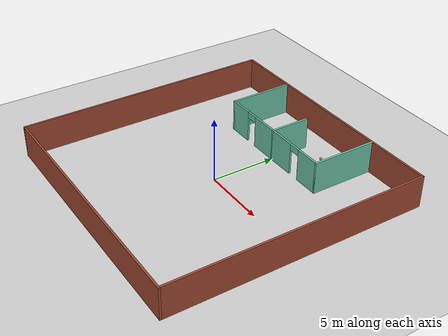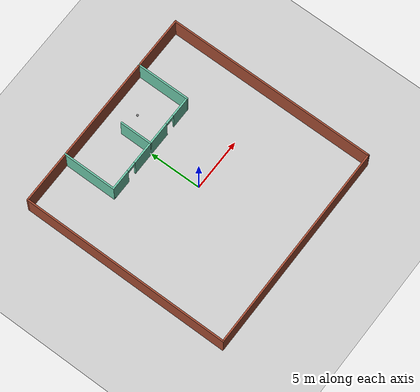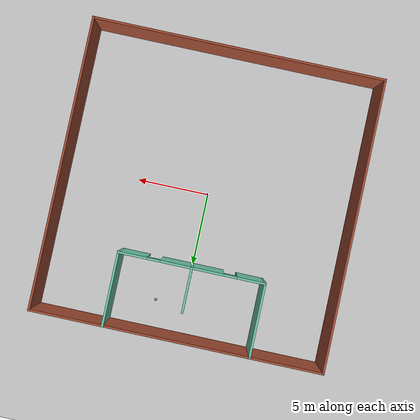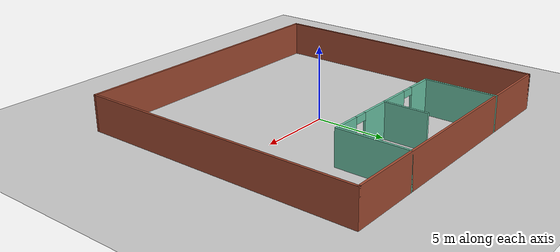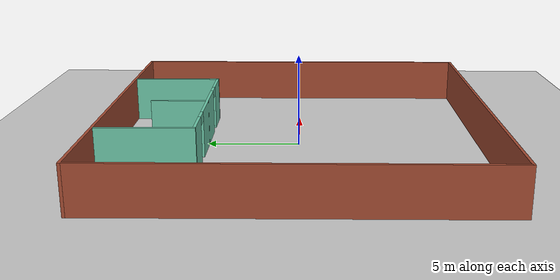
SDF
<sdf version="1.6">
 <world name="default">
  <model name="ground_plane">
   <static>1</static>
   <link name="link">
    <collision name="collision">
     <geometry><plane><normal>0 0 1</normal><size>100 100</size></plane></geometry>
     <surface>
      <contact><collide_bitmask>65535</collide_bitmask></contact>
      <friction><ode><mu>100</mu><mu2>50</mu2></ode></friction>
     </surface>
    </collision>
    <visual name="visual">
     <cast_shadows>0</cast_shadows>
     <geometry><plane><normal>0 0 1</normal><size>100 100</size></plane></geometry>
     <material>
      <script><uri>file://media/materials/scripts/gazebo.material</uri><name>Gazebo/Grey</name></script>
     </material>
    </visual>
   </link>
  </model>
  <model name="Room">
   <pose>-0.0061 0.018836 0 0 -0 0</pose>
   <link name="Wall_0">
    <collision name="Wall_0_Collision">
     <geometry><box><size>20.15 0.15 2.5</size></box></geometry>
     <pose>0 0 1.25 0 -0 0</pose>
    </collision>
    <visual name="Wall_0_Visual">
     <pose>0 0 1.25 0 -0 0</pose>
     <geometry><box><size>20.15 0.15 2.5</size></box></geometry>
     <material>
      <script><uri>file://media/materials/scripts/gazebo.material</uri><name>Gazebo/Bricks</name></script>
      <ambient>1 1 1 1</ambient>
     </material>
     <meta><layer>0</layer></meta>
    </visual>
    <pose>-10 0 0 0 -0 -1.5708</pose>
   </link>
   <link name="Wall_10">
    <collision name="Wall_10_Collision">
     <geometry><box><size>5.15 0.15 2.5</size></box></geometry>
     <pose>0 0 1.25 0 -0 0</pose>
    </collision>
    <visual name="Wall_10_Visual">
     <pose>0 0 1.25 0 -0 0</pose>
     <geometry><box><size>5.15 0.15 2.5</size></box></geometry>
     <material>
      <script><uri>file://media/materials/scripts/gazebo.material</uri><name>Gazebo/Grey</name></script>
      <ambient>0.435294 0.796078 0.67451 1</ambient>
     </material>
     <meta><layer>0</layer></meta>
    </visual>
    <pose>5 7.5 0 0 -0 1.5708</pose>
   </link>
   <link name="Wall_12">
    <collision name="Wall_12_Collision">
     <geometry><box><size>3.15 0.15 2.5</size></box></geometry>
     <pose>0 0 1.25 0 -0 0</pose>
    </collision>
    <visual name="Wall_12_Visual">
     <pose>0 0 1.25 0 -0 0</pose>
     <geometry><box><size>3.15 0.15 2.5</size></box></geometry>
     <material>
      <script><uri>file://media/materials/scripts/gazebo.material</uri><name>Gazebo/Grey</name></script>
      <ambient>0.435294 0.796078 0.67451 1</ambient>
     </material>
     <meta><layer>0</layer></meta>
    </visual>
    <pose>0 6.5 0 0 -0 1.5708</pose>
   </link>
   <link name="Wall_2">
    <collision name="Wall_2_Collision">
     <geometry><box><size>20.15 0.15 2.5</size></box></geometry>
     <pose>0 0 1.25 0 -0 0</pose>
    </collision>
    <visual name="Wall_2_Visual">
     <pose>0 0 1.25 0 -0 0</pose>
     <geometry><box><size>20.15 0.15 2.5</size></box></geometry>
     <material>
      <script><uri>file://media/materials/scripts/gazebo.material</uri><name>Gazebo/Bricks</name></script>
      <ambient>1 1 1 1</ambient>
     </material>
     <meta><layer>0</layer></meta>
    </visual>
    <pose>0 10 0 0 -0 0</pose>
   </link>
   <link name="Wall_4">
    <collision name="Wall_4_Collision">
     <geometry><box><size>20.15 0.15 2.5</size></box></geometry>
     <pose>0 0 1.25 0 -0 0</pose>
    </collision>
    <visual name="Wall_4_Visual">
     <pose>0 0 1.25 0 -0 0</pose>
     <geometry><box><size>20.15 0.15 2.5</size></box></geometry>
     <material>
      <script><uri>file://media/materials/scripts/gazebo.material</uri><name>Gazebo/Bricks</name></script>
      <ambient>1 1 1 1</ambient>
     </material>
     <meta><layer>0</layer></meta>
    </visual>
    <pose>10 0 0 0 -0 -1.5708</pose>
   </link>
   <link name="Wall_6">
    <collision name="Wall_6_Collision">
     <geometry><box><size>20.15 0.15 2.5</size></box></geometry>
     <pose>0 0 1.25 0 -0 0</pose>
    </collision>
    <visual name="Wall_6_Visual">
     <pose>0 0 1.25 0 -0 0</pose>
     <geometry><box><size>20.15 0.15 2.5</size></box></geometry>
     <material>
      <script><uri>file://media/materials/scripts/gazebo.material</uri><name>Gazebo/Bricks</name></script>
      <ambient>1 1 1 1</ambient>
     </material>
     <meta><layer>0</layer></meta>
    </visual>
    <pose>0 -10 0 0 -0 0</pose>
   </link>
   <link name="Wall_8">
    <collision name="Wall_8_Collision">
     <geometry><box><size>5.15 0.15 2.5</size></box></geometry>
     <pose>0 0 1.25 0 -0 0</pose>
    </collision>
    <visual name="Wall_8_Visual">
     <pose>0 0 1.25 0 -0 0</pose>
     <geometry><box><size>5.15 0.15 2.5</size></box></geometry>
     <material>
      <script><uri>file://media/materials/scripts/gazebo.material</uri><name>Gazebo/Grey</name></script>
      <ambient>0.435294 0.796078 0.67451 1</ambient>
     </material>
     <meta><layer>0</layer></meta>
    </visual>
    <pose>-5 7.5 0 0 -0 -1.5708</pose>
   </link>
   <link name="Wall_9">
    <pose>0 5 0 0 -0 0</pose>
    <visual name="Wall_9_Visual_0">
     <pose>-4.07964 0 1.25 0 -0 0</pose>
     <geometry><box><size>1.99073 0.15 2.5</size></box></geometry>
     <material>
      <script><uri>file://media/materials/scripts/gazebo.material</uri><name>Gazebo/Grey</name></script>
      <ambient>0.435294 0.796078 0.67451 1</ambient>
     </material>
     <meta><layer>0</layer></meta>
    </visual>
    <collision name="Wall_9_Collision_0">
     <geometry><box><size>1.99073 0.15 2.5</size></box></geometry>
     <pose>-4.07964 0 1.25 0 -0 0</pose>
    </collision>
    <visual name="Wall_9_Visual_1">
     <pose>-0.008186 0 1.25 0 -0 0</pose>
     <geometry><box><size>4.35217 0.15 2.5</size></box></geometry>
     <material>
      <script><uri>file://media/materials/scripts/gazebo.material</uri><name>Gazebo/Grey</name></script>
      <ambient>0.435294 0.796078 0.67451 1</ambient>
     </material>
     <meta><layer>0</layer></meta>
    </visual>
    <collision name="Wall_9_Collision_1">
     <geometry><box><size>4.35217 0.15 2.5</size></box></geometry>
     <pose>-0.008186 0 1.25 0 -0 0</pose>
    </collision>
    <visual name="Wall_9_Visual_2">
     <pose>4.07145 0 1.25 0 -0 0</pose>
     <geometry><box><size>2.0071 0.15 2.5</size></box></geometry>
     <material>
      <script><uri>file://media/materials/scripts/gazebo.material</uri><name>Gazebo/Grey</name></script>
      <ambient>0.435294 0.796078 0.67451 1</ambient>
     </material>
     <meta><layer>0</layer></meta>
    </visual>
    <collision name="Wall_9_Collision_2">
     <geometry><box><size>2.0071 0.15 2.5</size></box></geometry>
     <pose>4.07145 0 1.25 0 -0 0</pose>
    </collision>
    <visual name="Wall_9_Visual_3">
     <pose>-2.63427 0 2.25 0 -0 0</pose>
     <geometry><box><size>0.9 0.15 0.5</size></box></geometry>
     <material>
      <script><uri>file://media/materials/scripts/gazebo.material</uri><name>Gazebo/Grey</name></script>
      <ambient>0.435294 0.796078 0.67451 1</ambient>
     </material>
     <meta><layer>0</layer></meta>
    </visual>
    <collision name="Wall_9_Collision_3">
     <geometry><box><size>0.9 0.15 0.5</size></box></geometry>
     <pose>-2.63427 0 2.25 0 -0 0</pose>
    </collision>
    <visual name="Wall_9_Visual_4">
     <pose>2.6179 0 2.25 0 -0 0</pose>
     <geometry><box><size>0.9 0.15 0.5</size></box></geometry>
     <material>
      <script><uri>file://media/materials/scripts/gazebo.material</uri><name>Gazebo/Grey</name></script>
      <ambient>0.435294 0.796078 0.67451 1</ambient>
     </material>
     <meta><layer>0</layer></meta>
    </visual>
    <collision name="Wall_9_Collision_4">
     <geometry><box><size>0.9 0.15 0.5</size></box></geometry>
     <pose>2.6179 0 2.25 0 -0 0</pose>
    </collision>
   </link>
   <static>1</static>
  </model>
  <model name="my_ball">
   <link name="link_0">
    <inertial>
     <mass>1</mass>
     <inertia><ixx>0.1</ixx><ixy>0</ixy><ixz>0</ixz><iyy>0.1</iyy><iyz>0</iyz><izz>0.1</izz></inertia>
    </inertial>
    <visual name="visual">
     <geometry><sphere><radius>0.1</radius></sphere></geometry>
     <material>
      <lighting>1</lighting>
      <script><uri>file://media/materials/scripts/gazebo.material</uri><name>Gazebo/Grey</name></script>
      <shader type="pixel"><normal_map>__default__</normal_map></shader>
      <ambient>1 1 1 1</ambient>
      <diffuse>1 1 1 1</diffuse>
      <specular>1 1 1 1</specular>
      <emissive>1 1 1 1</emissive>
     </material>
    </visual>
    <collision name="collision">
     <geometry><sphere><radius>0.1</radius></sphere></geometry>
     <surface>
      <friction>
       <ode><mu>1</mu><mu2>1</mu2><fdir1>0 0 0</fdir1><slip1>0</slip1><slip2>0</slip2></ode>
       <torsional>
        <coefficient>1</coefficient>
        <patch_radius>0</patch_radius>
        <surface_radius>0</surface_radius>
        <use_patch_radius>1</use_patch_radius>
        <ode><slip>0</slip></ode>
       </torsional>
      </friction>
      <bounce><restitution_coefficient>0</restitution_coefficient><threshold>1e+06</threshold></bounce>
      <contact>
       <collide_without_contact>0</collide_without_contact>
       <collide_without_contact_bitmask>1</collide_without_contact_bitmask>
       <collide_bitmask>1</collide_bitmask>
       <ode>
        <soft_cfm>0</soft_cfm>
        <soft_erp>0.2</soft_erp>
        <kp>1e+13</kp>
        <kd>1</kd>
        <max_vel>0.01</max_vel>
        <min_depth>0</min_depth>
       </ode>
       <bullet>
        <split_impulse>1</split_impulse>
        <split_impulse_penetration_threshold>-0.01</split_impulse_penetration_threshold>
        <soft_cfm>0</soft_cfm>
        <soft_erp>0.2</soft_erp>
        <kp>1e+13</kp>
        <kd>1</kd>
       </bullet>
      </contact>
     </surface>
    </collision>
   </link>
   <static>0</static>
   <pose>2.02299 7.9956 0.1 0 -0 0</pose>
  </model>
 </world>
</sdf>
